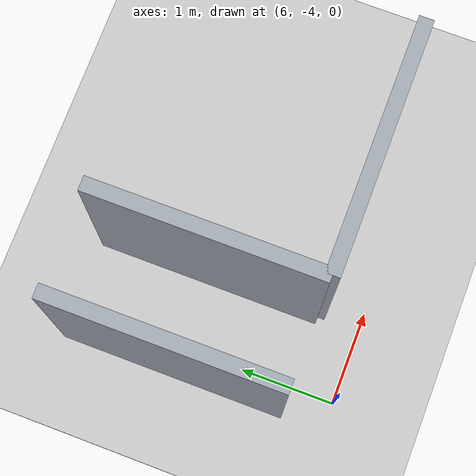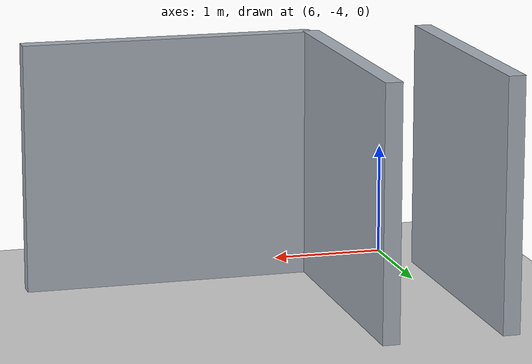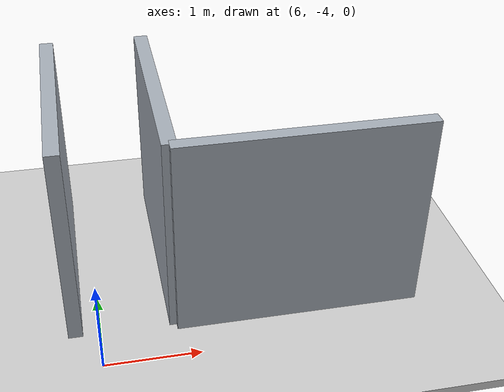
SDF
<sdf version="1.9">
 <world name="default">
  <model name="ground_plane">
   <static>true</static>
   <pose>5.05 0 -0.05 0 0 0</pose>
   <link name="body">
    <collision name="collision"><geometry><box><size>14.1 12 0.1</size></box></geometry></collision>
    <visual name="visual">
     <geometry><box><size>14.1 12 0.1</size></box></geometry>
     <material><ambient>0.8 0.8 0.8 1</ambient><diffuse>0.8 0.8 0.8 1</diffuse></material>
    </visual>
   </link>
  </model>
  <model name="room_-1_1_1">
   <static>true</static>
   <pose>5.75 -2.3499999999999996 1.1 0 0 0</pose>
   <link name="body">
    <collision name="collision"><geometry><box><size>0.15 2.4 2.2</size></box></geometry></collision>
    <visual name="visual">
     <geometry><box><size>0.15 2.4 2.2</size></box></geometry>
     <material><ambient>0.65 0.68 0.72 1</ambient><diffuse>0.65 0.68 0.72 1</diffuse></material>
    </visual>
   </link>
  </model>
  <model name="room_-1_2_-1">
   <static>true</static>
   <pose>6.8 -2.3499999999999996 1.1 0 0 0</pose>
   <link name="body">
    <collision name="collision"><geometry><box><size>0.15 2.4 2.2</size></box></geometry></collision>
    <visual name="visual">
     <geometry><box><size>0.15 2.4 2.2</size></box></geometry>
     <material><ambient>0.65 0.68 0.72 1</ambient><diffuse>0.65 0.68 0.72 1</diffuse></material>
    </visual>
   </link>
  </model>
  <model name="room_end_-1_2">
   <static>true</static>
   <pose>8.1 -3.55 1.1 0 0 0</pose>
   <link name="body">
    <collision name="collision"><geometry><box><size>2.6 0.15 2.2</size></box></geometry></collision>
    <visual name="visual">
     <geometry><box><size>2.6 0.15 2.2</size></box></geometry>
     <material><ambient>0.65 0.68 0.72 1</ambient><diffuse>0.65 0.68 0.72 1</diffuse></material>
    </visual>
   </link>
  </model>
 </world>
</sdf>
